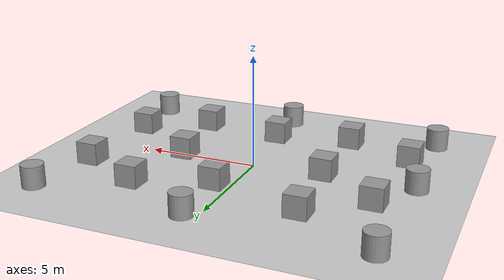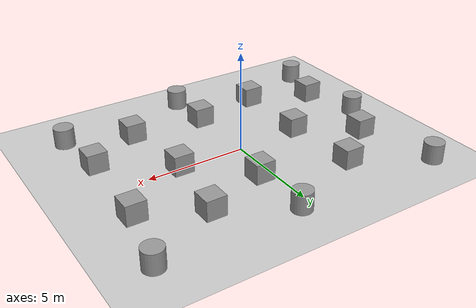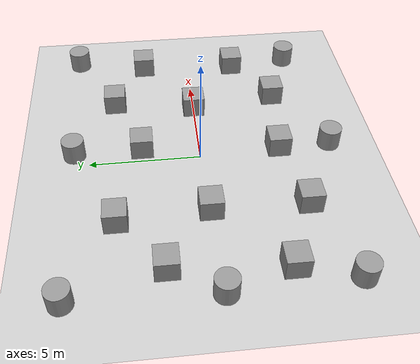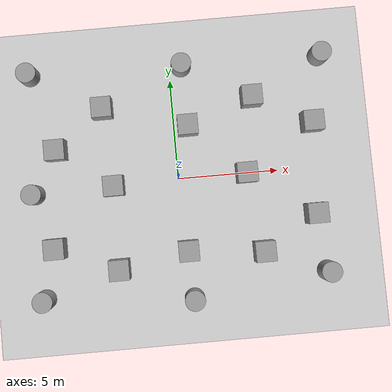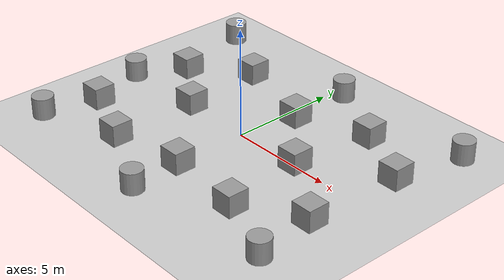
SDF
<sdf version="1.6">
 <world name="default">
  <model name="ground_plane">
   <static>1</static>
   <link name="link">
    <collision name="collision">
     <geometry><plane><normal>0 0 1</normal><size>100 100</size></plane></geometry>
     <surface><friction><ode><mu>100</mu><mu2>50</mu2></ode></friction></surface>
    </collision>
    <visual name="visual">
     <cast_shadows>0</cast_shadows>
     <geometry><plane><normal>0 0 1</normal><size>100 100</size></plane></geometry>
     <material>
      <script><uri>file://media/materials/scripts/gazebo.material</uri><name>Gazebo/Grey</name></script>
     </material>
    </visual>
   </link>
  </model>
  <light name="sun" type="directional">
   <pose>0 0 10 0 -0 0</pose>
   <diffuse>0.8 0.8 0.8 1</diffuse>
   <specular>0.2 0.2 0.2 1</specular>
   <attenuation>
    <range>1000</range>
    <constant>0.9</constant>
    <linear>0.01</linear>
    <quadratic>0.001</quadratic>
   </attenuation>
   <direction>-0.5 0.1 -0.9</direction>
   <spot><inner_angle>0</inner_angle><outer_angle>0</outer_angle><falloff>0</falloff></spot>
  </light>
  <scene><shadows>0</shadows><ambient>0.4 0.4 0.4 1</ambient><background>0.7 0.7 0.7 1</background></scene>
  <physics type="ode">
   <real_time_update_rate>1000</real_time_update_rate>
   <max_step_size>0.001</max_step_size>
   <real_time_factor>1</real_time_factor>
   <ode>
    <solver>
     <type>quick</type>
     <iters>150</iters>
     <precon_iters>0</precon_iters>
     <sor>1.4</sor>
     <use_dynamic_moi_rescaling>1</use_dynamic_moi_rescaling>
    </solver>
    <constraints>
     <cfm>1e-05</cfm>
     <erp>0.2</erp>
     <contact_max_correcting_vel>2000</contact_max_correcting_vel>
     <contact_surface_layer>0.01</contact_surface_layer>
    </constraints>
   </ode>
  </physics>
  <gravity>0 0 -9.8</gravity>
  <magnetic_field>6e-06 2.3e-05 -4.2e-05</magnetic_field>
  <atmosphere type="adiabatic"/>
  <audio><device>default</device></audio>
  <spherical_coordinates>
   <surface_model>EARTH_WGS84</surface_model>
   <latitude_deg>0</latitude_deg>
   <longitude_deg>0</longitude_deg>
   <elevation>0</elevation>
   <heading_deg>0</heading_deg>
  </spherical_coordinates>
  <model name="unit_box">
   <pose>3.38666 0.001849 0.5 0 -0 0</pose>
   <link name="link">
    <inertial>
     <mass>1</mass>
     <inertia>
      <ixx>0.166667</ixx>
      <ixy>0</ixy>
      <ixz>0</ixz>
      <iyy>0.166667</iyy>
      <iyz>0</iyz>
      <izz>0.166667</izz>
     </inertia>
    </inertial>
    <collision name="collision"><geometry><box><size>1 1 1</size></box></geometry></collision>
    <visual name="visual">
     <geometry><box><size>1 1 1</size></box></geometry>
     <material>
      <script><name>Gazebo/Grey</name><uri>file://media/materials/scripts/gazebo.material</uri></script>
     </material>
    </visual>
   </link>
  </model>
  <model name="unit_box_0">
   <pose>0.67697 2.60322 0.5 0 -0 0</pose>
   <link name="link">
    <inertial>
     <mass>1</mass>
     <inertia>
      <ixx>0.166667</ixx>
      <ixy>0</ixy>
      <ixz>0</ixz>
      <iyy>0.166667</iyy>
      <iyz>0</iyz>
      <izz>0.166667</izz>
     </inertia>
    </inertial>
    <collision name="collision"><geometry><box><size>1 1 1</size></box></geometry></collision>
    <visual name="visual">
     <geometry><box><size>1 1 1</size></box></geometry>
     <material>
      <script><name>Gazebo/Grey</name><uri>file://media/materials/scripts/gazebo.material</uri></script>
     </material>
    </visual>
   </link>
  </model>
  <model name="unit_box_1">
   <pose>-3.22361 -0.084555 0.5 0 -0 0</pose>
   <link name="link">
    <inertial>
     <mass>1</mass>
     <inertia>
      <ixx>0.166667</ixx>
      <ixy>0</ixy>
      <ixz>0</ixz>
      <iyy>0.166667</iyy>
      <iyz>0</iyz>
      <izz>0.166667</izz>
     </inertia>
    </inertial>
    <collision name="collision"><geometry><box><size>1 1 1</size></box></geometry></collision>
    <visual name="visual">
     <geometry><box><size>1 1 1</size></box></geometry>
     <material>
      <script><name>Gazebo/Grey</name><uri>file://media/materials/scripts/gazebo.material</uri></script>
     </material>
    </visual>
   </link>
  </model>
  <model name="unit_box_2">
   <pose>0.190268 -3.57976 0.5 0 -0 0</pose>
   <link name="link">
    <inertial>
     <mass>1</mass>
     <inertia>
      <ixx>0.166667</ixx>
      <ixy>0</ixy>
      <ixz>0</ixz>
      <iyy>0.166667</iyy>
      <iyz>0</iyz>
      <izz>0.166667</izz>
     </inertia>
    </inertial>
    <collision name="collision"><geometry><box><size>1 1 1</size></box></geometry></collision>
    <visual name="visual">
     <geometry><box><size>1 1 1</size></box></geometry>
     <material>
      <script><name>Gazebo/Grey</name><uri>file://media/materials/scripts/gazebo.material</uri></script>
     </material>
    </visual>
   </link>
  </model>
  <model name="unit_box_3">
   <pose>3.96673 3.78324 0.5 0 -0 0</pose>
   <link name="link">
    <inertial>
     <mass>1</mass>
     <inertia>
      <ixx>0.166667</ixx>
      <ixy>0</ixy>
      <ixz>0</ixz>
      <iyy>0.166667</iyy>
      <iyz>0</iyz>
      <izz>0.166667</izz>
     </inertia>
    </inertial>
    <collision name="collision"><geometry><box><size>1 1 1</size></box></geometry></collision>
    <visual name="visual">
     <geometry><box><size>1 1 1</size></box></geometry>
     <material>
      <script><name>Gazebo/Grey</name><uri>file://media/materials/scripts/gazebo.material</uri></script>
     </material>
    </visual>
   </link>
  </model>
  <model name="unit_box_4">
   <pose>3.90566 -3.92218 0.5 0 -0 0</pose>
   <link name="link">
    <inertial>
     <mass>1</mass>
     <inertia>
      <ixx>0.166667</ixx>
      <ixy>0</ixy>
      <ixz>0</ixz>
      <iyy>0.166667</iyy>
      <iyz>0</iyz>
      <izz>0.166667</izz>
     </inertia>
    </inertial>
    <collision name="collision"><geometry><box><size>1 1 1</size></box></geometry></collision>
    <visual name="visual">
     <geometry><box><size>1 1 1</size></box></geometry>
     <material>
      <script><name>Gazebo/Grey</name><uri>file://media/materials/scripts/gazebo.material</uri></script>
     </material>
    </visual>
   </link>
  </model>
  <model name="unit_box_5">
   <pose>-3.49931 3.82197 0.5 0 -0 0</pose>
   <link name="link">
    <inertial>
     <mass>1</mass>
     <inertia>
      <ixx>0.166667</ixx>
      <ixy>0</ixy>
      <ixz>0</ixz>
      <iyy>0.166667</iyy>
      <iyz>0</iyz>
      <izz>0.166667</izz>
     </inertia>
    </inertial>
    <collision name="collision"><geometry><box><size>1 1 1</size></box></geometry></collision>
    <visual name="visual">
     <geometry><box><size>1 1 1</size></box></geometry>
     <material>
      <script><name>Gazebo/Grey</name><uri>file://media/materials/scripts/gazebo.material</uri></script>
     </material>
    </visual>
   </link>
  </model>
  <model name="unit_box_6">
   <pose>-3.26445 -4.20284 0.5 0 -0 0</pose>
   <link name="link">
    <inertial>
     <mass>1</mass>
     <inertia>
      <ixx>0.166667</ixx>
      <ixy>0</ixy>
      <ixz>0</ixz>
      <iyy>0.166667</iyy>
      <iyz>0</iyz>
      <izz>0.166667</izz>
     </inertia>
    </inertial>
    <collision name="collision"><geometry><box><size>1 1 1</size></box></geometry></collision>
    <visual name="visual">
     <geometry><box><size>1 1 1</size></box></geometry>
     <material>
      <script><name>Gazebo/Grey</name><uri>file://media/materials/scripts/gazebo.material</uri></script>
     </material>
    </visual>
   </link>
  </model>
  <model name="unit_box_7">
   <pose>6.63246 -2.28389 0.5 0 -0 0</pose>
   <link name="link">
    <inertial>
     <mass>1</mass>
     <inertia>
      <ixx>0.166667</ixx>
      <ixy>0</ixy>
      <ixz>0</ixz>
      <iyy>0.166667</iyy>
      <iyz>0</iyz>
      <izz>0.166667</izz>
     </inertia>
    </inertial>
    <collision name="collision"><geometry><box><size>1 1 1</size></box></geometry></collision>
    <visual name="visual">
     <geometry><box><size>1 1 1</size></box></geometry>
     <material>
      <script><name>Gazebo/Grey</name><uri>file://media/materials/scripts/gazebo.material</uri></script>
     </material>
    </visual>
   </link>
  </model>
  <model name="unit_box_8">
   <pose>6.87415 2.26288 0.5 0 -0 0</pose>
   <link name="link">
    <inertial>
     <mass>1</mass>
     <inertia>
      <ixx>0.166667</ixx>
      <ixy>0</ixy>
      <ixz>0</ixz>
      <iyy>0.166667</iyy>
      <iyz>0</iyz>
      <izz>0.166667</izz>
     </inertia>
    </inertial>
    <collision name="collision"><geometry><box><size>1 1 1</size></box></geometry></collision>
    <visual name="visual">
     <geometry><box><size>1 1 1</size></box></geometry>
     <material>
      <script><name>Gazebo/Grey</name><uri>file://media/materials/scripts/gazebo.material</uri></script>
     </material>
    </visual>
   </link>
  </model>
  <model name="unit_box_9">
   <pose>-5.95784 1.92108 0.5 0 -0 0</pose>
   <link name="link">
    <inertial>
     <mass>1</mass>
     <inertia>
      <ixx>0.166667</ixx>
      <ixy>0</ixy>
      <ixz>0</ixz>
      <iyy>0.166667</iyy>
      <iyz>0</iyz>
      <izz>0.166667</izz>
     </inertia>
    </inertial>
    <collision name="collision"><geometry><box><size>1 1 1</size></box></geometry></collision>
    <visual name="visual">
     <geometry><box><size>1 1 1</size></box></geometry>
     <material>
      <script><name>Gazebo/Grey</name><uri>file://media/materials/scripts/gazebo.material</uri></script>
     </material>
    </visual>
   </link>
  </model>
  <model name="unit_box_10">
   <pose>-6.34165 -2.92589 0.5 0 -0 0</pose>
   <link name="link">
    <inertial>
     <mass>1</mass>
     <inertia>
      <ixx>0.166667</ixx>
      <ixy>0</ixy>
      <ixz>0</ixz>
      <iyy>0.166667</iyy>
      <iyz>0</iyz>
      <izz>0.166667</izz>
     </inertia>
    </inertial>
    <collision name="collision"><geometry><box><size>1 1 1</size></box></geometry></collision>
    <visual name="visual">
     <geometry><box><size>1 1 1</size></box></geometry>
     <material>
      <script><name>Gazebo/Grey</name><uri>file://media/materials/scripts/gazebo.material</uri></script>
     </material>
    </visual>
   </link>
  </model>
  <model name="unit_cylinder">
   <pose>6.98704 -5.17615 0.499997 -4e-06 -4e-06 -0</pose>
   <link name="link">
    <inertial>
     <mass>1</mass>
     <inertia><ixx>0.145833</ixx><ixy>0</ixy><ixz>0</ixz><iyy>0.145833</iyy><iyz>0</iyz><izz>0.125</izz></inertia>
    </inertial>
    <collision name="collision">
     <geometry><cylinder><radius>0.5</radius><length>1</length></cylinder></geometry>
    </collision>
    <visual name="visual">
     <geometry><cylinder><radius>0.5</radius><length>1</length></cylinder></geometry>
     <material>
      <script><name>Gazebo/Grey</name><uri>file://media/materials/scripts/gazebo.material</uri></script>
     </material>
    </visual>
   </link>
  </model>
  <model name="unit_cylinder_0">
   <pose>7.57803 5.61746 0.499993 4e-06 4e-06 -0</pose>
   <link name="link">
    <inertial>
     <mass>1</mass>
     <inertia><ixx>0.145833</ixx><ixy>0</ixy><ixz>0</ixz><iyy>0.145833</iyy><iyz>0</iyz><izz>0.125</izz></inertia>
    </inertial>
    <collision name="collision">
     <geometry><cylinder><radius>0.5</radius><length>1</length></cylinder></geometry>
    </collision>
    <visual name="visual">
     <geometry><cylinder><radius>0.5</radius><length>1</length></cylinder></geometry>
     <material>
      <script><name>Gazebo/Grey</name><uri>file://media/materials/scripts/gazebo.material</uri></script>
     </material>
    </visual>
   </link>
  </model>
  <model name="unit_cylinder_1">
   <pose>0.616267 5.65718 0.499997 -4e-06 -4e-06 -0</pose>
   <link name="link">
    <inertial>
     <mass>1</mass>
     <inertia><ixx>0.145833</ixx><ixy>0</ixy><ixz>0</ixz><iyy>0.145833</iyy><iyz>0</iyz><izz>0.125</izz></inertia>
    </inertial>
    <collision name="collision">
     <geometry><cylinder><radius>0.5</radius><length>1</length></cylinder></geometry>
    </collision>
    <visual name="visual">
     <geometry><cylinder><radius>0.5</radius><length>1</length></cylinder></geometry>
     <material>
      <script><name>Gazebo/Grey</name><uri>file://media/materials/scripts/gazebo.material</uri></script>
     </material>
    </visual>
   </link>
  </model>
  <model name="unit_cylinder_2">
   <pose>-7.05062 5.83323 0.499993 4e-06 4e-06 -0</pose>
   <link name="link">
    <inertial>
     <mass>1</mass>
     <inertia><ixx>0.145833</ixx><ixy>0</ixy><ixz>0</ixz><iyy>0.145833</iyy><iyz>0</iyz><izz>0.125</izz></inertia>
    </inertial>
    <collision name="collision">
     <geometry><cylinder><radius>0.5</radius><length>1</length></cylinder></geometry>
    </collision>
    <visual name="visual">
     <geometry><cylinder><radius>0.5</radius><length>1</length></cylinder></geometry>
     <material>
      <script><name>Gazebo/Grey</name><uri>file://media/materials/scripts/gazebo.material</uri></script>
     </material>
    </visual>
   </link>
  </model>
  <model name="unit_cylinder_3">
   <pose>-7.22685 -0.183543 0.499997 -4e-06 -4e-06 -0</pose>
   <link name="link">
    <inertial>
     <mass>1</mass>
     <inertia><ixx>0.145833</ixx><ixy>0</ixy><ixz>0</ixz><iyy>0.145833</iyy><iyz>0</iyz><izz>0.125</izz></inertia>
    </inertial>
    <collision name="collision">
     <geometry><cylinder><radius>0.5</radius><length>1</length></cylinder></geometry>
    </collision>
    <visual name="visual">
     <geometry><cylinder><radius>0.5</radius><length>1</length></cylinder></geometry>
     <material>
      <script><name>Gazebo/Grey</name><uri>file://media/materials/scripts/gazebo.material</uri></script>
     </material>
    </visual>
   </link>
  </model>
  <model name="unit_cylinder_4">
   <pose>-7.05957 -5.40846 0.499993 4e-06 4e-06 -0</pose>
   <link name="link">
    <inertial>
     <mass>1</mass>
     <inertia><ixx>0.145833</ixx><ixy>0</ixy><ixz>0</ixz><iyy>0.145833</iyy><iyz>0</iyz><izz>0.125</izz></inertia>
    </inertial>
    <collision name="collision">
     <geometry><cylinder><radius>0.5</radius><length>1</length></cylinder></geometry>
    </collision>
    <visual name="visual">
     <geometry><cylinder><radius>0.5</radius><length>1</length></cylinder></geometry>
     <material>
      <script><name>Gazebo/Grey</name><uri>file://media/materials/scripts/gazebo.material</uri></script>
     </material>
    </visual>
   </link>
  </model>
  <model name="unit_cylinder_5">
   <pose>0.28824 -5.96782 0.499997 -4e-06 -4e-06 -0</pose>
   <link name="link">
    <inertial>
     <mass>1</mass>
     <inertia><ixx>0.145833</ixx><ixy>0</ixy><ixz>0</ixz><iyy>0.145833</iyy><iyz>0</iyz><izz>0.125</izz></inertia>
    </inertial>
    <collision name="collision">
     <geometry><cylinder><radius>0.5</radius><length>1</length></cylinder></geometry>
    </collision>
    <visual name="visual">
     <geometry><cylinder><radius>0.5</radius><length>1</length></cylinder></geometry>
     <material>
      <script><name>Gazebo/Grey</name><uri>file://media/materials/scripts/gazebo.material</uri></script>
     </material>
    </visual>
   </link>
  </model>
  <light name="user_point_light_0" type="point">
   <pose>-0.01172 -0.065236 1 0 -0 0</pose>
   <diffuse>0.5 0.5 0.5 1</diffuse>
   <specular>0.1 0.1 0.1 1</specular>
   <attenuation>
    <range>20</range>
    <constant>0.5</constant>
    <linear>0.01</linear>
    <quadratic>0.001</quadratic>
   </attenuation>
   <cast_shadows>0</cast_shadows>
   <direction>0 0 -1</direction>
  </light>
 </world>
</sdf>
